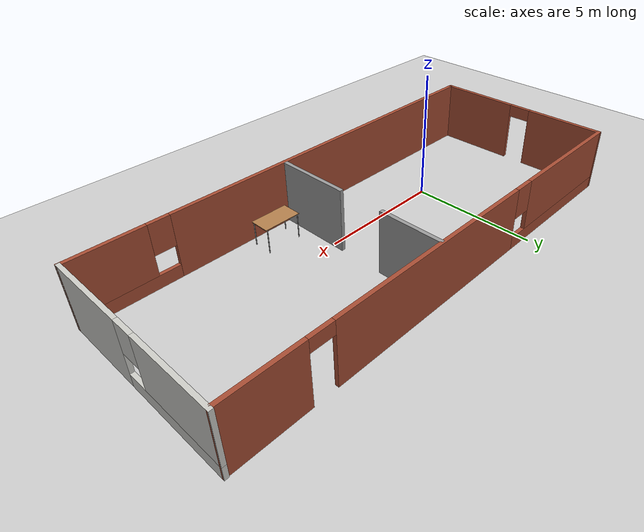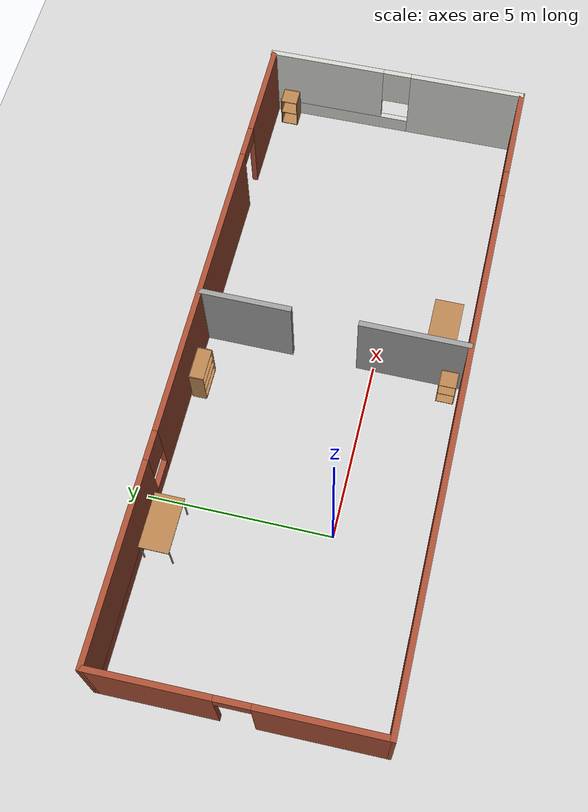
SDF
<sdf version="1.7">
 <world name="default">
  <light name="sun" type="directional">
   <pose>0 0 10 0 -0 0</pose>
   <diffuse>0.8 0.8 0.8 1</diffuse>
   <specular>0.2 0.2 0.2 1</specular>
   <attenuation>
    <range>1000</range>
    <constant>0.9</constant>
    <linear>0.01</linear>
    <quadratic>0.001</quadratic>
   </attenuation>
   <direction>-0.5 0.1 -0.9</direction>
   <spot><inner_angle>0</inner_angle><outer_angle>0</outer_angle><falloff>0</falloff></spot>
  </light>
  <model name="ground_plane">
   <static>1</static>
   <link name="link">
    <collision name="collision">
     <geometry><plane><normal>0 0 1</normal><size>100 100</size></plane></geometry>
     <surface>
      <contact><collide_bitmask>65535</collide_bitmask></contact>
      <friction><ode><mu>100</mu><mu2>50</mu2></ode></friction>
     </surface>
    </collision>
    <visual name="visual">
     <cast_shadows>0</cast_shadows>
     <geometry><plane><normal>0 0 1</normal><size>100 100</size></plane></geometry>
     <material>
      <script><uri>file://media/materials/scripts/gazebo.material</uri><name>Gazebo/Grey</name></script>
     </material>
    </visual>
   </link>
  </model>
  <gravity>0 0 -9.8</gravity>
  <magnetic_field>6e-06 2.3e-05 -4.2e-05</magnetic_field>
  <atmosphere type="adiabatic"/>
  <physics type="ode">
   <max_step_size>0.001</max_step_size>
   <real_time_factor>1</real_time_factor>
   <real_time_update_rate>1000</real_time_update_rate>
  </physics>
  <scene><ambient>0.4 0.4 0.4 1</ambient><background>0.7 0.7 0.7 1</background><shadows>1</shadows></scene>
  <audio><device>default</device></audio>
  <spherical_coordinates>
   <surface_model>EARTH_WGS84</surface_model>
   <latitude_deg>0</latitude_deg>
   <longitude_deg>0</longitude_deg>
   <elevation>0</elevation>
   <heading_deg>0</heading_deg>
  </spherical_coordinates>
  <model name="test">
   <pose>4.07252 1.75501 0 0 -0 0</pose>
   <link name="Wall_0">
    <pose>-9.13616 -0.604169 0 0 -0 -1.56084</pose>
    <visual name="Wall_0_Visual_0">
     <pose>-2.10454 0 1.25 0 -0 0</pose>
     <geometry><box><size>3.19383 0.15 2.5</size></box></geometry>
     <material>
      <script><uri>file://media/materials/scripts/gazebo.material</uri><name>Gazebo/Bricks</name></script>
      <ambient>1 1 1 1</ambient>
     </material>
     <meta><layer>0</layer></meta>
    </visual>
    <collision name="Wall_0_Collision_0">
     <geometry><box><size>3.19383 0.15 2.5</size></box></geometry>
     <pose>-2.10454 0 1.25 0 -0 0</pose>
    </collision>
    <visual name="Wall_0_Visual_1">
     <pose>2.04692 0 1.25 0 -0 0</pose>
     <geometry><box><size>3.30907 0.15 2.5</size></box></geometry>
     <material>
      <script><uri>file://media/materials/scripts/gazebo.material</uri><name>Gazebo/Bricks</name></script>
      <ambient>1 1 1 1</ambient>
     </material>
     <meta><layer>0</layer></meta>
    </visual>
    <collision name="Wall_0_Collision_1">
     <geometry><box><size>3.30907 0.15 2.5</size></box></geometry>
     <pose>2.04692 0 1.25 0 -0 0</pose>
    </collision>
    <visual name="Wall_0_Visual_2">
     <pose>-0.057621 0 2.25 0 -0 0</pose>
     <geometry><box><size>0.9 0.15 0.5</size></box></geometry>
     <material>
      <script><uri>file://media/materials/scripts/gazebo.material</uri><name>Gazebo/Bricks</name></script>
      <ambient>1 1 1 1</ambient>
     </material>
     <meta><layer>0</layer></meta>
    </visual>
    <collision name="Wall_0_Collision_2">
     <geometry><box><size>0.9 0.15 0.5</size></box></geometry>
     <pose>-0.057621 0 2.25 0 -0 0</pose>
    </collision>
   </link>
   <link name="Wall_1">
    <pose>0.036113 -4.24954 0 0 -0 0.000821</pose>
    <visual name="Wall_1_Visual_0">
     <pose>-1.78791 0 1.25 0 -0 0</pose>
     <geometry><box><size>14.8465 0.15 2.5</size></box></geometry>
     <material>
      <script><uri>file://media/materials/scripts/gazebo.material</uri><name>Gazebo/Bricks</name></script>
      <ambient>1 1 1 1</ambient>
     </material>
     <meta><layer>0</layer></meta>
    </visual>
    <collision name="Wall_1_Collision_0">
     <geometry><box><size>14.8465 0.15 2.5</size></box></geometry>
     <pose>-1.78791 0 1.25 0 -0 0</pose>
    </collision>
    <visual name="Wall_1_Visual_1">
     <pose>7.42326 0 0.25 0 -0 0</pose>
     <geometry><box><size>3.57583 0.15 0.5</size></box></geometry>
     <material>
      <script><uri>file://media/materials/scripts/gazebo.material</uri><name>Gazebo/Bricks</name></script>
      <ambient>1 1 1 1</ambient>
     </material>
     <meta><layer>0</layer></meta>
    </visual>
    <collision name="Wall_1_Collision_1">
     <geometry><box><size>3.57583 0.15 0.5</size></box></geometry>
     <pose>7.42326 0 0.25 0 -0 0</pose>
    </collision>
    <visual name="Wall_1_Visual_2">
     <pose>7.82326 0 1.5 0 -0 0</pose>
     <geometry><box><size>2.77583 0.15 2</size></box></geometry>
     <material>
      <script><uri>file://media/materials/scripts/gazebo.material</uri><name>Gazebo/Bricks</name></script>
      <ambient>1 1 1 1</ambient>
     </material>
     <meta><layer>0</layer></meta>
    </visual>
    <collision name="Wall_1_Collision_2">
     <geometry><box><size>2.77583 0.15 2</size></box></geometry>
     <pose>7.82326 0 1.5 0 -0 0</pose>
    </collision>
    <visual name="Wall_1_Visual_3">
     <pose>6.03535 0 1.9 0 -0 0</pose>
     <geometry><box><size>0.8 0.15 1.2</size></box></geometry>
     <material>
      <script><uri>file://media/materials/scripts/gazebo.material</uri><name>Gazebo/Bricks</name></script>
      <ambient>1 1 1 1</ambient>
     </material>
     <meta><layer>0</layer></meta>
    </visual>
    <collision name="Wall_1_Collision_3">
     <geometry><box><size>0.8 0.15 1.2</size></box></geometry>
     <pose>6.03535 0 1.9 0 -0 0</pose>
    </collision>
   </link>
   <link name="Wall_2">
    <pose>9.13616 -0.589159 0 0 -0 1.58075</pose>
    <visual name="Wall_2_Visual_0">
     <pose>-2.06959 0 1.25 0 -0 0</pose>
     <geometry><box><size>3.26372 0.15 2.5</size></box></geometry>
     <material>
      <script><uri>file://media/materials/scripts/gazebo.material</uri><name>Gazebo/CeilingTiled</name></script>
      <ambient>1 1 1 1</ambient>
     </material>
     <meta><layer>0</layer></meta>
    </visual>
    <collision name="Wall_2_Collision_0">
     <geometry><box><size>3.26372 0.15 2.5</size></box></geometry>
     <pose>-2.06959 0 1.25 0 -0 0</pose>
    </collision>
    <visual name="Wall_2_Visual_1">
     <pose>1.63186 0 0.25 0 -0 0</pose>
     <geometry><box><size>4.13919 0.15 0.5</size></box></geometry>
     <material>
      <script><uri>file://media/materials/scripts/gazebo.material</uri><name>Gazebo/CeilingTiled</name></script>
      <ambient>1 1 1 1</ambient>
     </material>
     <meta><layer>0</layer></meta>
    </visual>
    <collision name="Wall_2_Collision_1">
     <geometry><box><size>4.13919 0.15 0.5</size></box></geometry>
     <pose>1.63186 0 0.25 0 -0 0</pose>
    </collision>
    <visual name="Wall_2_Visual_2">
     <pose>2.03186 0 1.5 0 -0 0</pose>
     <geometry><box><size>3.33919 0.15 2</size></box></geometry>
     <material>
      <script><uri>file://media/materials/scripts/gazebo.material</uri><name>Gazebo/CeilingTiled</name></script>
      <ambient>1 1 1 1</ambient>
     </material>
     <meta><layer>0</layer></meta>
    </visual>
    <collision name="Wall_2_Collision_2">
     <geometry><box><size>3.33919 0.15 2</size></box></geometry>
     <pose>2.03186 0 1.5 0 -0 0</pose>
    </collision>
    <visual name="Wall_2_Visual_3">
     <pose>-0.037734 0 1.9 0 -0 0</pose>
     <geometry><box><size>0.8 0.15 1.2</size></box></geometry>
     <material>
      <script><uri>file://media/materials/scripts/gazebo.material</uri><name>Gazebo/CeilingTiled</name></script>
      <ambient>1 1 1 1</ambient>
     </material>
     <meta><layer>0</layer></meta>
    </visual>
    <collision name="Wall_2_Collision_3">
     <geometry><box><size>0.8 0.15 1.2</size></box></geometry>
     <pose>-0.037734 0 1.9 0 -0 0</pose>
    </collision>
   </link>
   <link name="Wall_3">
    <pose>-0.036114 3.01631 0 0 -0 3.14096</pose>
    <visual name="Wall_3_Visual_0">
     <pose>-7.778 0 1.25 0 -0 0</pose>
     <geometry><box><size>2.86643 0.15 2.5</size></box></geometry>
     <material>
      <script><uri>file://media/materials/scripts/gazebo.material</uri><name>Gazebo/Bricks</name></script>
      <ambient>1 1 1 1</ambient>
     </material>
     <meta><layer>0</layer></meta>
    </visual>
    <collision name="Wall_3_Collision_0">
     <geometry><box><size>2.86643 0.15 2.5</size></box></geometry>
     <pose>-7.778 0 1.25 0 -0 0</pose>
    </collision>
    <visual name="Wall_3_Visual_1">
     <pose>-1.16149 0 1.25 0 -0 0</pose>
     <geometry><box><size>8.56659 0.15 2.5</size></box></geometry>
     <material>
      <script><uri>file://media/materials/scripts/gazebo.material</uri><name>Gazebo/Bricks</name></script>
      <ambient>1 1 1 1</ambient>
     </material>
     <meta><layer>0</layer></meta>
    </visual>
    <collision name="Wall_3_Collision_1">
     <geometry><box><size>8.56659 0.15 2.5</size></box></geometry>
     <pose>-1.16149 0 1.25 0 -0 0</pose>
    </collision>
    <visual name="Wall_3_Visual_2">
     <pose>6.16651 0 0.25 0 -0 0</pose>
     <geometry><box><size>6.08941 0.15 0.5</size></box></geometry>
     <material>
      <script><uri>file://media/materials/scripts/gazebo.material</uri><name>Gazebo/Bricks</name></script>
      <ambient>1 1 1 1</ambient>
     </material>
     <meta><layer>0</layer></meta>
    </visual>
    <collision name="Wall_3_Collision_2">
     <geometry><box><size>6.08941 0.15 0.5</size></box></geometry>
     <pose>6.16651 0 0.25 0 -0 0</pose>
    </collision>
    <visual name="Wall_3_Visual_3">
     <pose>6.56651 0 1.5 0 -0 0</pose>
     <geometry><box><size>5.28941 0.15 2</size></box></geometry>
     <material>
      <script><uri>file://media/materials/scripts/gazebo.material</uri><name>Gazebo/Bricks</name></script>
      <ambient>1 1 1 1</ambient>
     </material>
     <meta><layer>0</layer></meta>
    </visual>
    <collision name="Wall_3_Collision_3">
     <geometry><box><size>5.28941 0.15 2</size></box></geometry>
     <pose>6.56651 0 1.5 0 -0 0</pose>
    </collision>
    <visual name="Wall_3_Visual_4">
     <pose>3.52181 0 1.9 0 -0 0</pose>
     <geometry><box><size>0.8 0.15 1.2</size></box></geometry>
     <material>
      <script><uri>file://media/materials/scripts/gazebo.material</uri><name>Gazebo/Bricks</name></script>
      <ambient>1 1 1 1</ambient>
     </material>
     <meta><layer>0</layer></meta>
    </visual>
    <collision name="Wall_3_Collision_4">
     <geometry><box><size>0.8 0.15 1.2</size></box></geometry>
     <pose>3.52181 0 1.9 0 -0 0</pose>
    </collision>
    <visual name="Wall_3_Visual_5">
     <pose>-5.89478 0 2.25 0 -0 0</pose>
     <geometry><box><size>0.9 0.15 0.5</size></box></geometry>
     <material>
      <script><uri>file://media/materials/scripts/gazebo.material</uri><name>Gazebo/Bricks</name></script>
      <ambient>1 1 1 1</ambient>
     </material>
     <meta><layer>0</layer></meta>
    </visual>
    <collision name="Wall_3_Collision_5">
     <geometry><box><size>0.9 0.15 0.5</size></box></geometry>
     <pose>-5.89478 0 2.25 0 -0 0</pose>
    </collision>
   </link>
   <link name="Wall_5">
    <collision name="Wall_5_Collision">
     <geometry><box><size>2.5 0.15 2.5</size></box></geometry>
     <pose>0 0 1.25 0 -0 0</pose>
    </collision>
    <visual name="Wall_5_Visual">
     <pose>0 0 1.25 0 -0 0</pose>
     <geometry><box><size>2.5 0.15 2.5</size></box></geometry>
     <material>
      <script><uri>file://media/materials/scripts/gazebo.material</uri><name>Gazebo/Grey</name></script>
      <ambient>1 1 1 1</ambient>
     </material>
     <meta><layer>0</layer></meta>
    </visual>
    <pose>0.937665 1.77192 0 0 -0 1.5708</pose>
   </link>
   <link name="Wall_7">
    <collision name="Wall_7_Collision">
     <geometry><box><size>3 0.15 2.5</size></box></geometry>
     <pose>0 0 1.25 0 -0 0</pose>
    </collision>
    <visual name="Wall_7_Visual">
     <pose>0 0 1.25 0 -0 0</pose>
     <geometry><box><size>3 0.15 2.5</size></box></geometry>
     <material>
      <script><uri>file://media/materials/scripts/gazebo.material</uri><name>Gazebo/Grey</name></script>
      <ambient>1 1 1 1</ambient>
     </material>
     <meta><layer>0</layer></meta>
    </visual>
    <pose>0.937665 -2.76989 0 0 -0 -1.5708</pose>
   </link>
   <static>1</static>
  </model>
  <model name="bookshelf">
   <static>1</static>
   <link name="link">
    <inertial><mass>1</mass></inertial>
    <collision name="back">
     <pose>0 0.005 0.6 0 -0 0</pose>
     <geometry><box><size>0.9 0.01 1.2</size></box></geometry>
    </collision>
    <visual name="visual1">
     <pose>0 0.005 0.6 0 -0 0</pose>
     <geometry><box><size>0.9 0.01 1.2</size></box></geometry>
     <material>
      <script><uri>file://media/materials/scripts/gazebo.material</uri><name>Gazebo/Wood</name></script>
     </material>
    </visual>
    <collision name="left_side">
     <pose>0.45 -0.195 0.6 0 -0 0</pose>
     <geometry><box><size>0.02 0.4 1.2</size></box></geometry>
    </collision>
    <visual name="visual2">
     <pose>0.45 -0.195 0.6 0 -0 0</pose>
     <geometry><box><size>0.02 0.4 1.2</size></box></geometry>
     <material>
      <script><uri>file://media/materials/scripts/gazebo.material</uri><name>Gazebo/Wood</name></script>
     </material>
    </visual>
    <collision name="right_side">
     <pose>-0.45 -0.195 0.6 0 -0 0</pose>
     <geometry><box><size>0.02 0.4 1.2</size></box></geometry>
    </collision>
    <visual name="visual3">
     <pose>-0.45 -0.195 0.6 0 -0 0</pose>
     <geometry><box><size>0.02 0.4 1.2</size></box></geometry>
     <material>
      <script><uri>file://media/materials/scripts/gazebo.material</uri><name>Gazebo/Wood</name></script>
     </material>
    </visual>
    <collision name="bottom">
     <pose>0 -0.195 0.03 0 -0 0</pose>
     <geometry><box><size>0.88 0.4 0.06</size></box></geometry>
    </collision>
    <visual name="visual4">
     <pose>0 -0.195 0.03 0 -0 0</pose>
     <geometry><box><size>0.88 0.4 0.06</size></box></geometry>
     <material>
      <script><uri>file://media/materials/scripts/gazebo.material</uri><name>Gazebo/Wood</name></script>
     </material>
    </visual>
    <collision name="top">
     <pose>0 -0.195 1.19 0 -0 0</pose>
     <geometry><box><size>0.88 0.4 0.02</size></box></geometry>
    </collision>
    <visual name="visual5">
     <pose>0 -0.195 1.19 0 -0 0</pose>
     <geometry><box><size>0.88 0.4 0.02</size></box></geometry>
     <material>
      <script><uri>file://media/materials/scripts/gazebo.material</uri><name>Gazebo/Wood</name></script>
     </material>
    </visual>
    <collision name="low_shelf">
     <pose>0 -0.195 0.43 0 -0 0</pose>
     <geometry><box><size>0.88 0.4 0.02</size></box></geometry>
    </collision>
    <visual name="visual6">
     <pose>0 -0.195 0.43 0 -0 0</pose>
     <geometry><box><size>0.88 0.4 0.02</size></box></geometry>
     <material>
      <script><uri>file://media/materials/scripts/gazebo.material</uri><name>Gazebo/Wood</name></script>
     </material>
    </visual>
    <collision name="high_shelf">
     <pose>0 -0.195 0.8 0 -0 0</pose>
     <geometry><box><size>0.88 0.4 0.02</size></box></geometry>
    </collision>
    <visual name="visual7">
     <pose>0 -0.195 0.8 0 -0 0</pose>
     <geometry><box><size>0.88 0.4 0.02</size></box></geometry>
     <material>
      <script><uri>file://media/materials/scripts/gazebo.material</uri><name>Gazebo/Wood</name></script>
     </material>
    </visual>
   </link>
   <pose>3.55058 4.65013 0 0 -0 0</pose>
  </model>
  <model name="cabinet">
   <static>1</static>
   <link name="cabinet_bottom_plate">
    <inertial>
     <pose>0 0 -1 0 -0 0</pose>
     <inertia><ixx>2.05</ixx><ixy>0</ixy><ixz>0</ixz><iyy>2.05</iyy><iyz>0</iyz><izz>2.05</izz></inertia>
     <mass>25</mass>
    </inertial>
    <collision name="cabinet_bottom_plate_geom">
     <pose>0 0 0.01 0 -0 0</pose>
     <geometry><box><size>0.45 0.45 0.02</size></box></geometry>
    </collision>
    <visual name="cabinet_bottom_plate_geom_visual">
     <pose>0 0 0.01 0 -0 0</pose>
     <geometry><box><size>0.45 0.45 0.02</size></box></geometry>
     <material>
      <script><uri>file://media/materials/scripts/gazebo.material</uri><name>Gazebo/Wood</name></script>
     </material>
    </visual>
    <collision name="cabinet_bottom_plate_geom_cabinet_back_plate">
     <pose>0.235 0 0.51 0 -0 0</pose>
     <geometry><box><size>0.02 0.45 1.02</size></box></geometry>
    </collision>
    <visual name="cabinet_bottom_plate_geom_cabinet_back_plate_visual">
     <pose>0.235 0 0.51 0 -0 0</pose>
     <geometry><box><size>0.02 0.45 1.02</size></box></geometry>
     <material>
      <script><uri>file://media/materials/scripts/gazebo.material</uri><name>Gazebo/Wood</name></script>
     </material>
    </visual>
    <collision name="cabinet_bottom_plate_geom_cabinet_left_plate">
     <pose>0 0.235 0.51 0 -0 0</pose>
     <geometry><box><size>0.45 0.02 1.02</size></box></geometry>
    </collision>
    <visual name="cabinet_bottom_plate_geom_cabinet_left_plate_visual">
     <pose>0 0.235 0.51 0 -0 0</pose>
     <geometry><box><size>0.45 0.02 1.02</size></box></geometry>
     <material>
      <script><uri>file://media/materials/scripts/gazebo.material</uri><name>Gazebo/Wood</name></script>
     </material>
    </visual>
    <collision name="cabinet_bottom_plate_geom_cabinet_middle_plate">
     <pose>0 0 0.51 0 -0 0</pose>
     <geometry><box><size>0.45 0.45 0.02</size></box></geometry>
    </collision>
    <visual name="cabinet_bottom_plate_geom_cabinet_middle_plate_visual">
     <pose>0 0 0.51 0 -0 0</pose>
     <geometry><box><size>0.45 0.45 0.02</size></box></geometry>
     <material>
      <script><uri>file://media/materials/scripts/gazebo.material</uri><name>Gazebo/Wood</name></script>
     </material>
    </visual>
    <collision name="cabinet_bottom_plate_geom_cabinet_right_plate">
     <pose>0 -0.235 0.51 0 -0 0</pose>
     <geometry><box><size>0.45 0.02 1.02</size></box></geometry>
    </collision>
    <visual name="cabinet_bottom_plate_geom_cabinet_right_plate_visual">
     <pose>0 -0.235 0.51 0 -0 0</pose>
     <geometry><box><size>0.45 0.02 1.02</size></box></geometry>
     <material>
      <script><uri>file://media/materials/scripts/gazebo.material</uri><name>Gazebo/Wood</name></script>
     </material>
    </visual>
    <collision name="cabinet_bottom_plate_geom_cabinet_top_plate">
     <pose>0 0 1.01 0 -0 0</pose>
     <geometry><box><size>0.45 0.45 0.02</size></box></geometry>
    </collision>
    <visual name="cabinet_bottom_plate_geom_cabinet_top_plate_visual">
     <pose>0 0 1.01 0 -0 0</pose>
     <geometry><box><size>0.45 0.45 0.02</size></box></geometry>
     <material>
      <script><uri>file://media/materials/scripts/gazebo.material</uri><name>Gazebo/Wood</name></script>
     </material>
    </visual>
   </link>
   <pose>4.66345 -2.0895 0 0 -0 0</pose>
  </model>
  <model name="table">
   <static>1</static>
   <link name="link">
    <collision name="surface">
     <pose>0 0 1 0 -0 0</pose>
     <geometry><box><size>1.5 0.8 0.03</size></box></geometry>
     <surface><friction><ode><mu>0.6</mu><mu2>0.6</mu2></ode></friction></surface>
    </collision>
    <visual name="visual1">
     <pose>0 0 1 0 -0 0</pose>
     <geometry><box><size>1.5 0.8 0.03</size></box></geometry>
     <material>
      <script><uri>file://media/materials/scripts/gazebo.material</uri><name>Gazebo/Wood</name></script>
     </material>
    </visual>
    <collision name="front_left_leg">
     <pose>0.68 0.38 0.5 0 -0 0</pose>
     <geometry><cylinder><radius>0.02</radius><length>1</length></cylinder></geometry>
    </collision>
    <visual name="front_left_leg">
     <pose>0.68 0.38 0.5 0 -0 0</pose>
     <geometry><cylinder><radius>0.02</radius><length>1</length></cylinder></geometry>
     <material>
      <script><uri>file://media/materials/scripts/gazebo.material</uri><name>Gazebo/Grey</name></script>
     </material>
    </visual>
    <collision name="front_right_leg">
     <pose>0.68 -0.38 0.5 0 -0 0</pose>
     <geometry><cylinder><radius>0.02</radius><length>1</length></cylinder></geometry>
    </collision>
    <visual name="front_right_leg">
     <pose>0.68 -0.38 0.5 0 -0 0</pose>
     <geometry><cylinder><radius>0.02</radius><length>1</length></cylinder></geometry>
     <material>
      <script><uri>file://media/materials/scripts/gazebo.material</uri><name>Gazebo/Grey</name></script>
     </material>
    </visual>
    <collision name="back_right_leg">
     <pose>-0.68 -0.38 0.5 0 -0 0</pose>
     <geometry><cylinder><radius>0.02</radius><length>1</length></cylinder></geometry>
    </collision>
    <visual name="back_right_leg">
     <pose>-0.68 -0.38 0.5 0 -0 0</pose>
     <geometry><cylinder><radius>0.02</radius><length>1</length></cylinder></geometry>
     <material>
      <script><uri>file://media/materials/scripts/gazebo.material</uri><name>Gazebo/Grey</name></script>
     </material>
    </visual>
    <collision name="back_left_leg">
     <pose>-0.68 0.38 0.5 0 -0 0</pose>
     <geometry><cylinder><radius>0.02</radius><length>1</length></cylinder></geometry>
    </collision>
    <visual name="back_left_leg">
     <pose>-0.68 0.38 0.5 0 -0 0</pose>
     <geometry><cylinder><radius>0.02</radius><length>1</length></cylinder></geometry>
     <material>
      <script><uri>file://media/materials/scripts/gazebo.material</uri><name>Gazebo/Grey</name></script>
     </material>
    </visual>
   </link>
   <pose>-0.909634 4.24984 0 0 -0 0</pose>
  </model>
  <model name="table_0">
   <static>1</static>
   <link name="link">
    <collision name="surface">
     <pose>0 0 1 0 -0 0</pose>
     <geometry><box><size>1.5 0.8 0.03</size></box></geometry>
     <surface><friction><ode><mu>0.6</mu><mu2>0.6</mu2></ode></friction></surface>
    </collision>
    <visual name="visual1">
     <pose>0 0 1 0 -0 0</pose>
     <geometry><box><size>1.5 0.8 0.03</size></box></geometry>
     <material>
      <script><uri>file://media/materials/scripts/gazebo.material</uri><name>Gazebo/Wood</name></script>
     </material>
    </visual>
    <collision name="front_left_leg">
     <pose>0.68 0.38 0.5 0 -0 0</pose>
     <geometry><cylinder><radius>0.02</radius><length>1</length></cylinder></geometry>
    </collision>
    <visual name="front_left_leg">
     <pose>0.68 0.38 0.5 0 -0 0</pose>
     <geometry><cylinder><radius>0.02</radius><length>1</length></cylinder></geometry>
     <material>
      <script><uri>file://media/materials/scripts/gazebo.material</uri><name>Gazebo/Grey</name></script>
     </material>
    </visual>
    <collision name="front_right_leg">
     <pose>0.68 -0.38 0.5 0 -0 0</pose>
     <geometry><cylinder><radius>0.02</radius><length>1</length></cylinder></geometry>
    </collision>
    <visual name="front_right_leg">
     <pose>0.68 -0.38 0.5 0 -0 0</pose>
     <geometry><cylinder><radius>0.02</radius><length>1</length></cylinder></geometry>
     <material>
      <script><uri>file://media/materials/scripts/gazebo.material</uri><name>Gazebo/Grey</name></script>
     </material>
    </visual>
    <collision name="back_right_leg">
     <pose>-0.68 -0.38 0.5 0 -0 0</pose>
     <geometry><cylinder><radius>0.02</radius><length>1</length></cylinder></geometry>
    </collision>
    <visual name="back_right_leg">
     <pose>-0.68 -0.38 0.5 0 -0 0</pose>
     <geometry><cylinder><radius>0.02</radius><length>1</length></cylinder></geometry>
     <material>
      <script><uri>file://media/materials/scripts/gazebo.material</uri><name>Gazebo/Grey</name></script>
     </material>
    </visual>
    <collision name="back_left_leg">
     <pose>-0.68 0.38 0.5 0 -0 0</pose>
     <geometry><cylinder><radius>0.02</radius><length>1</length></cylinder></geometry>
    </collision>
    <visual name="back_left_leg">
     <pose>-0.68 0.38 0.5 0 -0 0</pose>
     <geometry><cylinder><radius>0.02</radius><length>1</length></cylinder></geometry>
     <material>
      <script><uri>file://media/materials/scripts/gazebo.material</uri><name>Gazebo/Grey</name></script>
     </material>
    </visual>
   </link>
   <pose>6.25178 -1.68785 0 0 -0 0</pose>
  </model>
  <model name="cabinet_0">
   <static>1</static>
   <link name="cabinet_bottom_plate">
    <inertial>
     <pose>0 0 -1 0 -0 0</pose>
     <inertia><ixx>2.05</ixx><ixy>0</ixy><ixz>0</ixz><iyy>2.05</iyy><iyz>0</iyz><izz>2.05</izz></inertia>
     <mass>25</mass>
    </inertial>
    <collision name="cabinet_bottom_plate_geom">
     <pose>0 0 0.01 0 -0 0</pose>
     <geometry><box><size>0.45 0.45 0.02</size></box></geometry>
    </collision>
    <visual name="cabinet_bottom_plate_geom_visual">
     <pose>0 0 0.01 0 -0 0</pose>
     <geometry><box><size>0.45 0.45 0.02</size></box></geometry>
     <material>
      <script><uri>file://media/materials/scripts/gazebo.material</uri><name>Gazebo/Wood</name></script>
     </material>
    </visual>
    <collision name="cabinet_bottom_plate_geom_cabinet_back_plate">
     <pose>0.235 0 0.51 0 -0 0</pose>
     <geometry><box><size>0.02 0.45 1.02</size></box></geometry>
    </collision>
    <visual name="cabinet_bottom_plate_geom_cabinet_back_plate_visual">
     <pose>0.235 0 0.51 0 -0 0</pose>
     <geometry><box><size>0.02 0.45 1.02</size></box></geometry>
     <material>
      <script><uri>file://media/materials/scripts/gazebo.material</uri><name>Gazebo/Wood</name></script>
     </material>
    </visual>
    <collision name="cabinet_bottom_plate_geom_cabinet_left_plate">
     <pose>0 0.235 0.51 0 -0 0</pose>
     <geometry><box><size>0.45 0.02 1.02</size></box></geometry>
    </collision>
    <visual name="cabinet_bottom_plate_geom_cabinet_left_plate_visual">
     <pose>0 0.235 0.51 0 -0 0</pose>
     <geometry><box><size>0.45 0.02 1.02</size></box></geometry>
     <material>
      <script><uri>file://media/materials/scripts/gazebo.material</uri><name>Gazebo/Wood</name></script>
     </material>
    </visual>
    <collision name="cabinet_bottom_plate_geom_cabinet_middle_plate">
     <pose>0 0 0.51 0 -0 0</pose>
     <geometry><box><size>0.45 0.45 0.02</size></box></geometry>
    </collision>
    <visual name="cabinet_bottom_plate_geom_cabinet_middle_plate_visual">
     <pose>0 0 0.51 0 -0 0</pose>
     <geometry><box><size>0.45 0.45 0.02</size></box></geometry>
     <material>
      <script><uri>file://media/materials/scripts/gazebo.material</uri><name>Gazebo/Wood</name></script>
     </material>
    </visual>
    <collision name="cabinet_bottom_plate_geom_cabinet_right_plate">
     <pose>0 -0.235 0.51 0 -0 0</pose>
     <geometry><box><size>0.45 0.02 1.02</size></box></geometry>
    </collision>
    <visual name="cabinet_bottom_plate_geom_cabinet_right_plate_visual">
     <pose>0 -0.235 0.51 0 -0 0</pose>
     <geometry><box><size>0.45 0.02 1.02</size></box></geometry>
     <material>
      <script><uri>file://media/materials/scripts/gazebo.material</uri><name>Gazebo/Wood</name></script>
     </material>
    </visual>
    <collision name="cabinet_bottom_plate_geom_cabinet_top_plate">
     <pose>0 0 1.01 0 -0 0</pose>
     <geometry><box><size>0.45 0.45 0.02</size></box></geometry>
    </collision>
    <visual name="cabinet_bottom_plate_geom_cabinet_top_plate_visual">
     <pose>0 0 1.01 0 -0 0</pose>
     <geometry><box><size>0.45 0.45 0.02</size></box></geometry>
     <material>
      <script><uri>file://media/materials/scripts/gazebo.material</uri><name>Gazebo/Wood</name></script>
     </material>
    </visual>
   </link>
   <pose>12.8522 4.25274 0 0 -0 0</pose>
  </model>
 </world>
</sdf>
